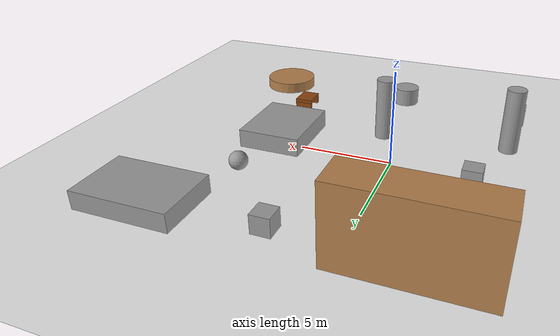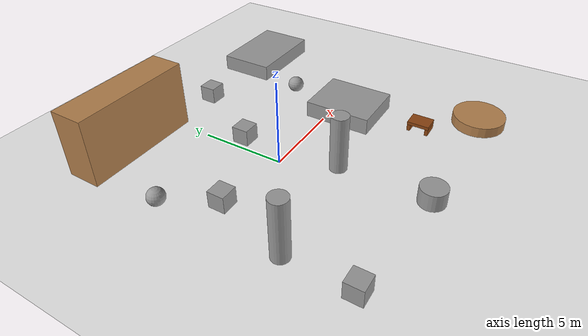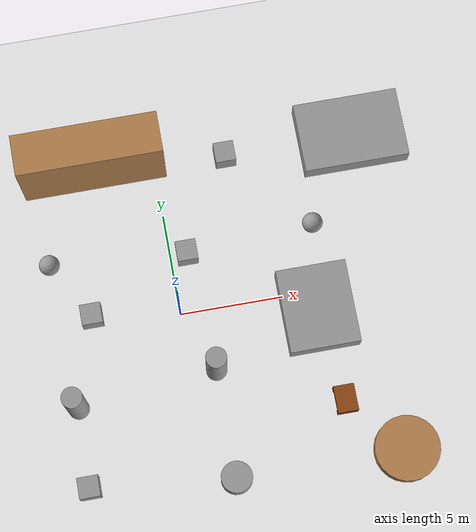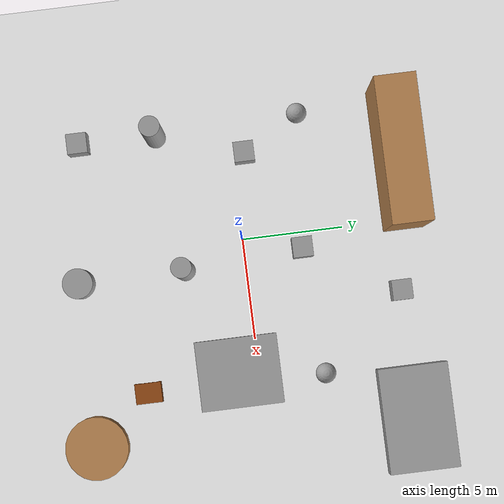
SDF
<sdf version="1.6">
 <world name="default">
  <scene>
   <grid>0</grid>
   <ambient>0.4 0.4 0.4 1</ambient>
   <background>0.7 0.7 0.7 1</background>
   <shadows>0</shadows>
  </scene>
  <light name="sun" type="directional">
   <pose>0 0 10 0 -0 0</pose>
   <diffuse>0.8 0.8 0.8 1</diffuse>
   <specular>0.2 0.2 0.2 1</specular>
   <attenuation>
    <range>1000</range>
    <constant>0.9</constant>
    <linear>0.01</linear>
    <quadratic>0.001</quadratic>
   </attenuation>
   <direction>-0.5 0.1 -0.9</direction>
  </light>
  <model name="ground_plane">
   <static>1</static>
   <link name="link">
    <collision name="collision">
     <geometry><plane><normal>0 0 1</normal><size>100 100</size></plane></geometry>
     <surface>
      <contact><collide_bitmask>65535</collide_bitmask></contact>
      <friction><ode><mu>100</mu><mu2>50</mu2></ode></friction>
     </surface>
    </collision>
    <visual name="visual">
     <cast_shadows>0</cast_shadows>
     <geometry><plane><normal>0 0 1</normal><size>100 100</size></plane></geometry>
     <material>
      <script><uri>file://media/materials/scripts/gazebo.material</uri><name>Gazebo/White</name></script>
     </material>
    </visual>
   </link>
  </model>
  <gravity>0 0 -9.8</gravity>
  <magnetic_field>6e-06 2.3e-05 -4.2e-05</magnetic_field>
  <atmosphere type="adiabatic"/>
  <physics name="default_physics" default="0" type="ode">
   <max_step_size>0.001</max_step_size>
   <real_time_factor>1</real_time_factor>
   <real_time_update_rate>1000</real_time_update_rate>
  </physics>
  <scene><ambient>0.4 0.4 0.4 1</ambient><background>0.7 0.7 0.7 1</background><shadows>1</shadows></scene>
  <audio><device>default</device></audio>
  <spherical_coordinates>
   <surface_model>EARTH_WGS84</surface_model>
   <latitude_deg>0</latitude_deg>
   <longitude_deg>0</longitude_deg>
   <elevation>0</elevation>
   <heading_deg>0</heading_deg>
  </spherical_coordinates>
  <model name="unit_box">
   <link name="link">
    <inertial>
     <mass>1</mass>
     <inertia>
      <ixx>0.166667</ixx>
      <ixy>0</ixy>
      <ixz>0</ixz>
      <iyy>0.166667</iyy>
      <iyz>0</iyz>
      <izz>0.166667</izz>
     </inertia>
    </inertial>
    <visual name="visual">
     <geometry><box><size>1 1 1</size></box></geometry>
     <material>
      <script><name>Gazebo/Grey</name><uri>file://media/materials/scripts/gazebo.material</uri></script>
     </material>
    </visual>
    <collision name="collision">
     <geometry><box><size>1 1 1</size></box></geometry>
     <surface>
      <friction>
       <ode><mu>1</mu><mu2>1</mu2><fdir1>0 0 0</fdir1><slip1>0</slip1><slip2>0</slip2></ode>
       <torsional>
        <coefficient>1</coefficient>
        <patch_radius>0</patch_radius>
        <surface_radius>0</surface_radius>
        <use_patch_radius>1</use_patch_radius>
        <ode><slip>0</slip></ode>
       </torsional>
      </friction>
      <bounce><restitution_coefficient>0</restitution_coefficient><threshold>1e+06</threshold></bounce>
      <contact>
       <collide_without_contact>0</collide_without_contact>
       <collide_without_contact_bitmask>1</collide_without_contact_bitmask>
       <collide_bitmask>1</collide_bitmask>
       <ode>
        <soft_cfm>0</soft_cfm>
        <soft_erp>0.2</soft_erp>
        <kp>1e+13</kp>
        <kd>1</kd>
        <max_vel>0.01</max_vel>
        <min_depth>0</min_depth>
       </ode>
       <bullet>
        <split_impulse>1</split_impulse>
        <split_impulse_penetration_threshold>-0.01</split_impulse_penetration_threshold>
        <soft_cfm>0</soft_cfm>
        <soft_erp>0.2</soft_erp>
        <kp>1e+13</kp>
        <kd>1</kd>
       </bullet>
      </contact>
     </surface>
    </collision>
   </link>
   <static>1</static>
   <pose>0.799839 2.87803 0.5 0 0 -5e-06</pose>
  </model>
  <model name="unit_sphere_0">
   <link name="link">
    <inertial>
     <mass>1</mass>
     <inertia><ixx>0.1</ixx><ixy>0</ixy><ixz>0</ixz><iyy>0.1</iyy><iyz>0</iyz><izz>0.1</izz></inertia>
    </inertial>
    <visual name="visual">
     <geometry><sphere><radius>0.5</radius></sphere></geometry>
     <material>
      <script><name>Gazebo/Grey</name><uri>file://media/materials/scripts/gazebo.material</uri></script>
     </material>
    </visual>
    <collision name="collision">
     <geometry><sphere><radius>0.5</radius></sphere></geometry>
     <surface>
      <friction>
       <ode><mu>1</mu><mu2>1</mu2><fdir1>0 0 0</fdir1><slip1>0</slip1><slip2>0</slip2></ode>
       <torsional>
        <coefficient>1</coefficient>
        <patch_radius>0</patch_radius>
        <surface_radius>0</surface_radius>
        <use_patch_radius>1</use_patch_radius>
        <ode><slip>0</slip></ode>
       </torsional>
      </friction>
      <bounce><restitution_coefficient>0</restitution_coefficient><threshold>1e+06</threshold></bounce>
      <contact>
       <collide_without_contact>0</collide_without_contact>
       <collide_without_contact_bitmask>1</collide_without_contact_bitmask>
       <collide_bitmask>1</collide_bitmask>
       <ode>
        <soft_cfm>0</soft_cfm>
        <soft_erp>0.2</soft_erp>
        <kp>1e+13</kp>
        <kd>1</kd>
        <max_vel>0.01</max_vel>
        <min_depth>0</min_depth>
       </ode>
       <bullet>
        <split_impulse>1</split_impulse>
        <split_impulse_penetration_threshold>-0.01</split_impulse_penetration_threshold>
        <soft_cfm>0</soft_cfm>
        <soft_erp>0.2</soft_erp>
        <kp>1e+13</kp>
        <kd>1</kd>
       </bullet>
      </contact>
     </surface>
    </collision>
   </link>
   <static>1</static>
   <pose>7.08304 3.27341 0.5 0 -0 0</pose>
  </model>
  <model name="unit_cylinder">
   <link name="link">
    <inertial>
     <mass>1</mass>
     <inertia><ixx>0.145833</ixx><ixy>0</ixy><ixz>0</ixz><iyy>0.145833</iyy><iyz>0</iyz><izz>0.125</izz></inertia>
    </inertial>
    <visual name="visual">
     <geometry><cylinder><radius>0.75</radius><length>1</length></cylinder></geometry>
     <material>
      <script><name>Gazebo/Grey</name><uri>file://media/materials/scripts/gazebo.material</uri></script>
     </material>
    </visual>
    <collision name="collision">
     <geometry><cylinder><radius>0.75</radius><length>1</length></cylinder></geometry>
     <surface>
      <friction>
       <ode><mu>1</mu><mu2>1</mu2><fdir1>0 0 0</fdir1><slip1>0</slip1><slip2>0</slip2></ode>
       <torsional>
        <coefficient>1</coefficient>
        <patch_radius>0</patch_radius>
        <surface_radius>0</surface_radius>
        <use_patch_radius>1</use_patch_radius>
        <ode><slip>0</slip></ode>
       </torsional>
      </friction>
      <bounce><restitution_coefficient>0</restitution_coefficient><threshold>1e+06</threshold></bounce>
      <contact>
       <collide_without_contact>0</collide_without_contact>
       <collide_without_contact_bitmask>1</collide_without_contact_bitmask>
       <collide_bitmask>1</collide_bitmask>
       <ode>
        <soft_cfm>0</soft_cfm>
        <soft_erp>0.2</soft_erp>
        <kp>1e+13</kp>
        <kd>1</kd>
        <max_vel>0.01</max_vel>
        <min_depth>0</min_depth>
       </ode>
       <bullet>
        <split_impulse>1</split_impulse>
        <split_impulse_penetration_threshold>-0.01</split_impulse_penetration_threshold>
        <soft_cfm>0</soft_cfm>
        <soft_erp>0.2</soft_erp>
        <kp>1e+13</kp>
        <kd>1</kd>
       </bullet>
      </contact>
     </surface>
    </collision>
   </link>
   <static>1</static>
   <pose>1.24077 -8.27429 0.5 0 -0 0</pose>
  </model>
  <model name="unit_sphere">
   <link name="link">
    <inertial>
     <mass>1</mass>
     <inertia><ixx>0.1</ixx><ixy>0</ixy><ixz>0</ixz><iyy>0.1</iyy><iyz>0</iyz><izz>0.1</izz></inertia>
    </inertial>
    <visual name="visual">
     <geometry><sphere><radius>0.5</radius></sphere></geometry>
     <material>
      <script><name>Gazebo/Grey</name><uri>file://media/materials/scripts/gazebo.material</uri></script>
     </material>
    </visual>
    <collision name="collision">
     <geometry><sphere><radius>0.5</radius></sphere></geometry>
     <surface>
      <friction>
       <ode><mu>1</mu><mu2>1</mu2><fdir1>0 0 0</fdir1><slip1>0</slip1><slip2>0</slip2></ode>
       <torsional>
        <coefficient>1</coefficient>
        <patch_radius>0</patch_radius>
        <surface_radius>0</surface_radius>
        <use_patch_radius>1</use_patch_radius>
        <ode><slip>0</slip></ode>
       </torsional>
      </friction>
      <bounce><restitution_coefficient>0</restitution_coefficient><threshold>1e+06</threshold></bounce>
      <contact>
       <collide_without_contact>0</collide_without_contact>
       <collide_without_contact_bitmask>1</collide_without_contact_bitmask>
       <collide_bitmask>1</collide_bitmask>
       <ode>
        <soft_cfm>0</soft_cfm>
        <soft_erp>0.2</soft_erp>
        <kp>1e+13</kp>
        <kd>1</kd>
        <max_vel>0.01</max_vel>
        <min_depth>0</min_depth>
       </ode>
       <bullet>
        <split_impulse>1</split_impulse>
        <split_impulse_penetration_threshold>-0.01</split_impulse_penetration_threshold>
        <soft_cfm>0</soft_cfm>
        <soft_erp>0.2</soft_erp>
        <kp>1e+13</kp>
        <kd>1</kd>
       </bullet>
      </contact>
     </surface>
    </collision>
   </link>
   <static>1</static>
   <pose>-5.85156 3.4131 0.5 0 -0 0</pose>
  </model>
  <model name="unit_box_0">
   <pose>7.00027 -6.04742 0.199997 -1.2e-05 9e-06 0.000112</pose>
   <static>0</static>
   <link name="link">
    <inertial>
     <mass>1000</mass>
     <inertia><ixx>97</ixx><ixy>0</ixy><ixz>0</ixz><iyy>16.67</iyy><iyz>0</iyz><izz>87</izz></inertia>
    </inertial>
    <collision name="collision"><geometry><box><size>1 0.2 0.4</size></box></geometry></collision>
    <visual name="visual">
     <geometry><box><size>1 0.2 0.4</size></box></geometry>
     <material><ambient>0.55 0.27 0.07 1</ambient><diffuse>0.55 0.27 0.07 1</diffuse></material>
    </visual>
   </link>
  </model>
  <model name="unit_box_1">
   <pose>7.00149 -4.9527 0.199992 9e-06 -1.7e-05 0.000364</pose>
   <link name="link">
    <inertial>
     <mass>1000</mass>
     <inertia><ixx>97</ixx><ixy>0</ixy><ixz>0</ixz><iyy>16.67</iyy><iyz>0</iyz><izz>87</izz></inertia>
    </inertial>
    <collision name="collision"><geometry><box><size>1 0.2 0.4</size></box></geometry></collision>
    <visual name="visual">
     <geometry><box><size>1 0.2 0.4</size></box></geometry>
     <material><ambient>0.55 0.27 0.07 1</ambient><diffuse>0.55 0.27 0.07 1</diffuse></material>
    </visual>
   </link>
  </model>
  <model name="unit_box_2">
   <pose>6.99488 -5.49986 0.499993 -1e-06 -1e-06 -0.001242</pose>
   <link name="link">
    <inertial>
     <mass>1000</mass>
     <inertia><ixx>166.667</ixx><ixy>0</ixy><ixz>0</ixz><iyy>166.667</iyy><iyz>0</iyz><izz>166.667</izz></inertia>
    </inertial>
    <collision name="collision"><geometry><box><size>1 1.3 0.2</size></box></geometry></collision>
    <visual name="visual">
     <geometry><box><size>1 1.3 0.2</size></box></geometry>
     <material><ambient>0.55 0.27 0.07 1</ambient><diffuse>0.55 0.27 0.07 1</diffuse></material>
    </visual>
   </link>
  </model>
  <model name="unit_box_3">
   <pose>-3.00005 8 1.99998 0 -5e-06 0.000257</pose>
   <link name="link">
    <inertial>
     <mass>1000</mass>
     <inertia><ixx>5417</ixx><ixy>0</ixy><ixz>0</ixz><iyy>1667</iyy><iyz>0</iyz><izz>4417</izz></inertia>
    </inertial>
    <collision name="collision"><geometry><box><size>7 2 4</size></box></geometry></collision>
    <visual name="visual">
     <geometry><box><size>7 2 4</size></box></geometry>
     <material>
      <script><name>Gazebo/WoodFloor</name><uri>file://media/materials/scripts/gazebo.material</uri></script>
     </material>
    </visual>
   </link>
  </model>
  <model name="unit_cylinder_0">
   <pose>-5.54652 -3.68033 1.76643 0 -0 4.3e-05</pose>
   <link name="link">
    <inertial>
     <mass>100</mass>
     <inertia><ixx>100</ixx><ixy>0</ixy><ixz>0</ixz><iyy>100</iyy><iyz>0</iyz><izz>100</izz></inertia>
    </inertial>
    <collision name="collision">
     <geometry><cylinder><radius>0.5</radius><length>3.53288</length></cylinder></geometry>
    </collision>
    <visual name="visual">
     <geometry><cylinder><radius>0.5</radius><length>3.53288</length></cylinder></geometry>
     <material>
      <script><name>Gazebo/Grey</name><uri>file://media/materials/scripts/gazebo.material</uri></script>
     </material>
    </visual>
   </link>
  </model>
  <model name="unit_cylinder_1">
   <pose>1.22445 -3.00188 1.70541 0 -0 0.000846</pose>
   <link name="link">
    <inertial>
     <mass>100</mass>
     <inertia><ixx>100</ixx><ixy>0</ixy><ixz>0</ixz><iyy>100</iyy><iyz>0</iyz><izz>100</izz></inertia>
    </inertial>
    <collision name="collision">
     <geometry><cylinder><radius>0.5</radius><length>3.41084</length></cylinder></geometry>
    </collision>
    <visual name="visual">
     <geometry><cylinder><radius>0.5</radius><length>3.41084</length></cylinder></geometry>
     <material>
      <script><name>Gazebo/Grey</name><uri>file://media/materials/scripts/gazebo.material</uri></script>
     </material>
    </visual>
   </link>
  </model>
  <model name="unit_box_4">
   <pose>6.51536 -0.952763 0.5 0 -0 0</pose>
   <link name="link">
    <inertial>
     <mass>100</mass>
     <inertia><ixx>100</ixx><ixy>0</ixy><ixz>0</ixz><iyy>100</iyy><iyz>0</iyz><izz>100</izz></inertia>
    </inertial>
    <collision name="collision"><geometry><box><size>3.41292 4.0527 1</size></box></geometry></collision>
    <visual name="visual">
     <geometry><box><size>3.41292 4.0527 1</size></box></geometry>
     <material>
      <script><name>Gazebo/Grey</name><uri>file://media/materials/scripts/gazebo.material</uri></script>
     </material>
    </visual>
   </link>
  </model>
  <model name="unit_box_5">
   <pose>9.79639 7.47196 0.5 0 -0 0</pose>
   <link name="link">
    <inertial>
     <mass>100</mass>
     <inertia><ixx>100</ixx><ixy>0</ixy><ixz>0</ixz><iyy>100</iyy><iyz>0</iyz><izz>100</izz></inertia>
    </inertial>
    <collision name="collision"><geometry><box><size>5.15629 3.44186 1</size></box></geometry></collision>
    <visual name="visual">
     <geometry><box><size>5.15629 3.44186 1</size></box></geometry>
     <material>
      <script><name>Gazebo/Grey</name><uri>file://media/materials/scripts/gazebo.material</uri></script>
     </material>
    </visual>
   </link>
  </model>
  <model name="unit_box_6">
   <pose>3.47656 7.46068 0.5 0 -0 0</pose>
   <link name="link">
    <inertial>
     <mass>100</mass>
     <inertia><ixx>100</ixx><ixy>0</ixy><ixz>0</ixz><iyy>100</iyy><iyz>0</iyz><izz>100</izz></inertia>
    </inertial>
    <collision name="collision"><geometry><box><size>1 1 1</size></box></geometry></collision>
    <visual name="visual">
     <geometry><box><size>1 1 1</size></box></geometry>
     <material>
      <script><name>Gazebo/Grey</name><uri>file://media/materials/scripts/gazebo.material</uri></script>
     </material>
    </visual>
   </link>
  </model>
  <model name="unit_box_7">
   <pose>-5.61531 -7.51146 0.5 0 -0 0</pose>
   <link name="link">
    <inertial>
     <mass>100</mass>
     <inertia><ixx>100</ixx><ixy>0</ixy><ixz>0</ixz><iyy>100</iyy><iyz>0</iyz><izz>100</izz></inertia>
    </inertial>
    <collision name="collision"><geometry><box><size>1 1 1</size></box></geometry></collision>
    <visual name="visual">
     <geometry><box><size>1 1 1</size></box></geometry>
     <material>
      <script><name>Gazebo/Grey</name><uri>file://media/materials/scripts/gazebo.material</uri></script>
     </material>
    </visual>
   </link>
  </model>
  <model name="unit_cylinder_2">
   <pose>9.38116 -8.33009 0.318975 0 -0 1.3e-05</pose>
   <link name="link">
    <inertial>
     <mass>100</mass>
     <inertia><ixx>100</ixx><ixy>0</ixy><ixz>0</ixz><iyy>100</iyy><iyz>0</iyz><izz>100</izz></inertia>
    </inertial>
    <collision name="collision">
     <geometry><cylinder><radius>1.55514</radius><length>0.63795</length></cylinder></geometry>
    </collision>
    <visual name="visual">
     <geometry><cylinder><radius>1.55514</radius><length>0.63795</length></cylinder></geometry>
     <material>
      <script><name>Gazebo/WoodPallet</name><uri>file://media/materials/scripts/gazebo.material</uri></script>
     </material>
    </visual>
   </link>
  </model>
  <light name="user_spot_light_1" type="spot">
   <pose>5.19365 -5.53876 1 0 -0 0</pose>
   <diffuse>0.5 0.5 0.5 1</diffuse>
   <specular>0.1 0.1 0.1 1</specular>
   <direction>0 0 -1</direction>
   <attenuation>
    <range>20</range>
    <constant>0.5</constant>
    <linear>0.01</linear>
    <quadratic>0.001</quadratic>
   </attenuation>
   <cast_shadows>0</cast_shadows>
   <spot><inner_angle>0.6</inner_angle><outer_angle>1</outer_angle><falloff>1</falloff></spot>
  </light>
  <model name="unit_box_8">
   <link name="link">
    <inertial>
     <mass>1</mass>
     <inertia>
      <ixx>0.166667</ixx>
      <ixy>0</ixy>
      <ixz>0</ixz>
      <iyy>0.166667</iyy>
      <iyz>0</iyz>
      <izz>0.166667</izz>
     </inertia>
    </inertial>
    <visual name="visual">
     <geometry><box><size>1 1 1</size></box></geometry>
     <material>
      <script><name>Gazebo/Grey</name><uri>file://media/materials/scripts/gazebo.material</uri></script>
     </material>
    </visual>
    <collision name="collision">
     <geometry><box><size>1 1 1</size></box></geometry>
     <surface>
      <friction>
       <ode><mu>1</mu><mu2>1</mu2><fdir1>0 0 0</fdir1><slip1>0</slip1><slip2>0</slip2></ode>
       <torsional>
        <coefficient>1</coefficient>
        <patch_radius>0</patch_radius>
        <surface_radius>0</surface_radius>
        <use_patch_radius>1</use_patch_radius>
        <ode><slip>0</slip></ode>
       </torsional>
      </friction>
      <bounce><restitution_coefficient>0</restitution_coefficient><threshold>1e+06</threshold></bounce>
      <contact>
       <collide_without_contact>0</collide_without_contact>
       <collide_without_contact_bitmask>1</collide_without_contact_bitmask>
       <collide_bitmask>1</collide_bitmask>
       <ode>
        <soft_cfm>0</soft_cfm>
        <soft_erp>0.2</soft_erp>
        <kp>1e+13</kp>
        <kd>1</kd>
        <max_vel>0.01</max_vel>
        <min_depth>0</min_depth>
       </ode>
       <bullet>
        <split_impulse>1</split_impulse>
        <split_impulse_penetration_threshold>-0.01</split_impulse_penetration_threshold>
        <soft_cfm>0</soft_cfm>
        <soft_erp>0.2</soft_erp>
        <kp>1e+13</kp>
        <kd>1</kd>
       </bullet>
      </contact>
     </surface>
    </collision>
   </link>
   <static>1</static>
   <pose>-4.22199 0.595069 0.499994 1e-05 -0 0</pose>
  </model>
 </world>
</sdf>
